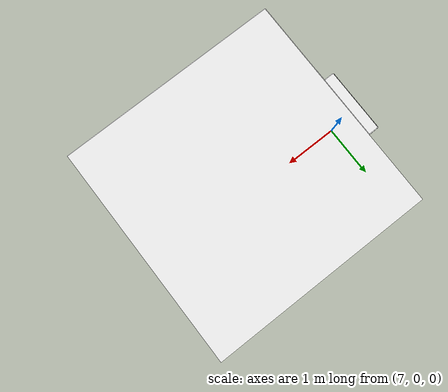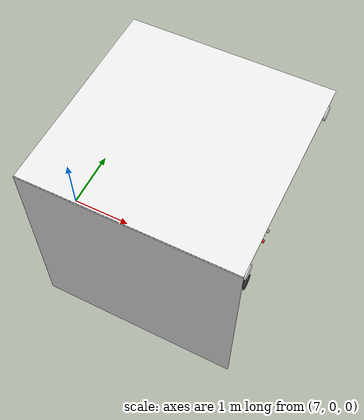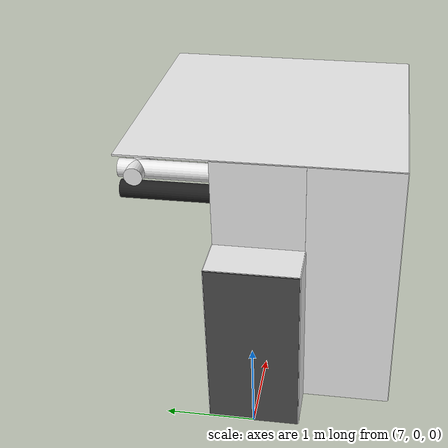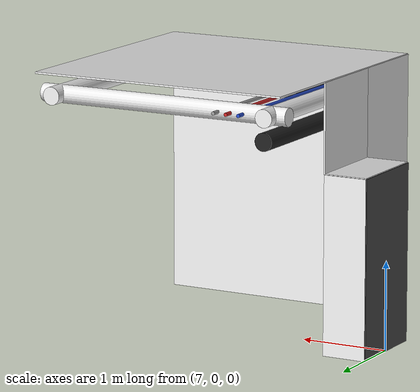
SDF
<sdf version="1.6">
 <world name="default">
  <model name="wall_front_3_0_0_3">
   <static>1</static>
   <pose>9.0 -1.5 1.5 0.0 0.0 3.14</pose>
   <link name="link">
    <collision name="collision"><geometry><box><size>3.0 0.02 3.0</size></box></geometry></collision>
    <visual name="visual">
     <material>
      <script><name>Gazebo/White</name><uri>file://media/materials/scripts/gazebo.material</uri></script>
     </material>
     <geometry><box><size>3.0 0.02 3.0</size></box></geometry>
    </visual>
   </link>
  </model>
  <model name="wall_top_3_0_0_3">
   <static>1</static>
   <pose>9.0 0.0 3.0 1.57 0.0 3.14</pose>
   <link name="link">
    <collision name="collision"><geometry><box><size>3.0 0.02 3.0</size></box></geometry></collision>
    <visual name="visual">
     <material>
      <script><name>Gazebo/White</name><uri>file://media/materials/scripts/gazebo.material</uri></script>
     </material>
     <geometry><box><size>3.0 0.02 3.0</size></box></geometry>
    </visual>
   </link>
  </model>
  <model name="white_pipe_left_3_0_0_3">
   <static>1</static>
   <pose>9.0 0.0 2.76 0.0 0.0 3.14</pose>
   <link name="link_0">
    <visual name="visual">
     <pose>-1.3 0 0 1.57 0 0</pose>
     <geometry><cylinder><radius>0.1</radius><length>3.0</length></cylinder></geometry>
     <material>
      <script><uri>file://media/materials/scripts/gazebo.material</uri><name>Gazebo/White</name></script>
     </material>
    </visual>
    <collision name="collision">
     <pose>-1.3 0 0 1.57 0 0</pose>
     <geometry><cylinder><radius>0.1</radius><length>3.0</length></cylinder></geometry>
    </collision>
   </link>
  </model>
  <model name="white_pipe_right_3_0_0_3">
   <static>1</static>
   <pose>9.0 0.0 2.76 0.0 0.0 3.14</pose>
   <link name="link_0">
    <visual name="visual">
     <pose>1.3 0 0 1.57 0 0</pose>
     <geometry><cylinder><radius>0.1</radius><length>3.0</length></cylinder></geometry>
     <material>
      <script><uri>file://media/materials/scripts/gazebo.material</uri><name>Gazebo/White</name></script>
     </material>
    </visual>
    <collision name="collision">
     <pose>1.3 0 0 1.57 0 0</pose>
     <geometry><cylinder><radius>0.1</radius><length>3.0</length></cylinder></geometry>
    </collision>
   </link>
  </model>
  <model name="black_pipe_right_3_0_0_3">
   <static>1</static>
   <pose>9.0 0.0 2.76 0.0 0.0 3.14</pose>
   <link name="link_0">
    <visual name="visual">
     <pose>1.3 0 -0.25 1.57 0 0</pose>
     <geometry><cylinder><radius>0.1</radius><length>3.0</length></cylinder></geometry>
     <material>
      <script><uri>file://media/materials/scripts/gazebo.material</uri><name>Gazebo/Black</name></script>
     </material>
    </visual>
    <collision name="collision">
     <pose>1.3 0 -0.25 1.57 0 0</pose>
     <geometry><cylinder><radius>0.1</radius><length>3.0</length></cylinder></geometry>
    </collision>
   </link>
  </model>
  <model name="grey_pipe_right_3_0_0_3">
   <static>1</static>
   <pose>9.0 0.0 2.76 0.0 0.0 3.14</pose>
   <link name="link_0">
    <visual name="visual">
     <pose>0.7 0 0 1.57 0 0</pose>
     <geometry><cylinder><radius>0.02</radius><length>3.0</length></cylinder></geometry>
     <material>
      <script><uri>file://media/materials/scripts/gazebo.material</uri><name>Gazebo/Grey</name></script>
     </material>
    </visual>
    <collision name="collision">
     <pose>0.7 0 0 1.57 0 0</pose>
     <geometry><cylinder><radius>0.02</radius><length>3.0</length></cylinder></geometry>
    </collision>
   </link>
  </model>
  <model name="red_pipe_right_3_0_0_3">
   <static>1</static>
   <pose>9.0 0.0 2.76 0.0 0.0 3.14</pose>
   <link name="link_0">
    <visual name="visual">
     <pose>0.85 0 0 1.57 0 0</pose>
     <geometry><cylinder><radius>0.02</radius><length>3.0</length></cylinder></geometry>
     <material>
      <script><uri>file://media/materials/scripts/gazebo.material</uri><name>Gazebo/Red</name></script>
     </material>
    </visual>
    <collision name="collision">
     <pose>0.85 0 0 1.57 0 0</pose>
     <geometry><cylinder><radius>0.02</radius><length>3.0</length></cylinder></geometry>
    </collision>
   </link>
  </model>
  <model name="blue_pipe_right_3_0_0_3">
   <static>1</static>
   <pose>9.0 0.0 2.76 0.0 0.0 3.14</pose>
   <link name="link_0">
    <visual name="visual">
     <pose>1 0 0 1.57 0 0</pose>
     <geometry><cylinder><radius>0.02</radius><length>3.0</length></cylinder></geometry>
     <material>
      <script><uri>file://media/materials/scripts/gazebo.material</uri><name>Gazebo/Blue</name></script>
     </material>
    </visual>
    <collision name="collision">
     <pose>1 0 0 1.57 0 0</pose>
     <geometry><cylinder><radius>0.02</radius><length>3.0</length></cylinder></geometry>
    </collision>
   </link>
  </model>
  <model name="white_pipe_left_1_3_0_0_3">
   <static>1</static>
   <pose>9.0 0.0 2.76 0.0 0.0 4.71</pose>
   <link name="link_0">
    <visual name="visual">
     <pose>-1.3 0 0 1.57 0 0</pose>
     <geometry><cylinder><radius>0.1</radius><length>3.0</length></cylinder></geometry>
     <material>
      <script><uri>file://media/materials/scripts/gazebo.material</uri><name>Gazebo/White</name></script>
     </material>
    </visual>
    <collision name="collision">
     <pose>-1.3 0 0 1.57 0 0</pose>
     <geometry><cylinder><radius>0.1</radius><length>3.0</length></cylinder></geometry>
    </collision>
   </link>
  </model>
  <model name="white_pipe_right_1_3_0_0_3">
   <static>1</static>
   <pose>9.0 0.0 2.76 0.0 0.0 4.71</pose>
   <link name="link_0">
    <visual name="visual">
     <pose>1.3 0 0 1.57 0 0</pose>
     <geometry><cylinder><radius>0.1</radius><length>3.0</length></cylinder></geometry>
     <material>
      <script><uri>file://media/materials/scripts/gazebo.material</uri><name>Gazebo/White</name></script>
     </material>
    </visual>
    <collision name="collision">
     <pose>1.3 0 0 1.57 0 0</pose>
     <geometry><cylinder><radius>0.1</radius><length>3.0</length></cylinder></geometry>
    </collision>
   </link>
  </model>
  <model name="black_pipe_right_1_3_0_0_3">
   <static>1</static>
   <pose>9.0 0.0 2.76 0.0 0.0 4.71</pose>
   <link name="link_0">
    <visual name="visual">
     <pose>1.3 0 -0.25 1.57 0 0</pose>
     <geometry><cylinder><radius>0.1</radius><length>3.0</length></cylinder></geometry>
     <material>
      <script><uri>file://media/materials/scripts/gazebo.material</uri><name>Gazebo/Black</name></script>
     </material>
    </visual>
    <collision name="collision">
     <pose>1.3 0 -0.25 1.57 0 0</pose>
     <geometry><cylinder><radius>0.1</radius><length>3.0</length></cylinder></geometry>
    </collision>
   </link>
  </model>
  <model name="grey_pipe_right_1_3_0_0_3">
   <static>1</static>
   <pose>9.0 0.0 2.76 0.0 0.0 4.71</pose>
   <link name="link_0">
    <visual name="visual">
     <pose>0.7 0 0 1.57 0 0</pose>
     <geometry><cylinder><radius>0.02</radius><length>3.0</length></cylinder></geometry>
     <material>
      <script><uri>file://media/materials/scripts/gazebo.material</uri><name>Gazebo/Grey</name></script>
     </material>
    </visual>
    <collision name="collision">
     <pose>0.7 0 0 1.57 0 0</pose>
     <geometry><cylinder><radius>0.02</radius><length>3.0</length></cylinder></geometry>
    </collision>
   </link>
  </model>
  <model name="red_pipe_right_1_3_0_0_3">
   <static>1</static>
   <pose>9.0 0.0 2.76 0.0 0.0 4.71</pose>
   <link name="link_0">
    <visual name="visual">
     <pose>0.85 0 0 1.57 0 0</pose>
     <geometry><cylinder><radius>0.02</radius><length>3.0</length></cylinder></geometry>
     <material>
      <script><uri>file://media/materials/scripts/gazebo.material</uri><name>Gazebo/Red</name></script>
     </material>
    </visual>
    <collision name="collision">
     <pose>0.85 0 0 1.57 0 0</pose>
     <geometry><cylinder><radius>0.02</radius><length>3.0</length></cylinder></geometry>
    </collision>
   </link>
  </model>
  <model name="wall_right_front_left_3_0_0_3">
   <static>1</static>
   <pose>7.5 -1.0 1.5 0.0 0.0 4.71</pose>
   <link name="link">
    <collision name="collision"><geometry><box><size>1.0 0.02 3.0</size></box></geometry></collision>
    <visual name="visual">
     <material>
      <script><name>Gazebo/White</name><uri>file://media/materials/scripts/gazebo.material</uri></script>
     </material>
     <geometry><box><size>1.0 0.02 3.0</size></box></geometry>
    </visual>
   </link>
  </model>
  <model name="wall_right_front_up_3_0_0_3">
   <static>1</static>
   <pose>7.5 0.0 2.5 0.0 0.0 4.71</pose>
   <link name="link">
    <collision name="collision"><geometry><box><size>1.0 0.02 1.0</size></box></geometry></collision>
    <visual name="visual">
     <material>
      <script><name>Gazebo/White</name><uri>file://media/materials/scripts/gazebo.material</uri></script>
     </material>
     <geometry><box><size>1.0 0.02 1.0</size></box></geometry>
    </visual>
   </link>
  </model>
  <model name="wall_right_inside_back_3_0_0_3">
   <static>1</static>
   <pose>7.0 0.0 1.0 0.0 0.0 4.71</pose>
   <link name="link">
    <collision name="collision"><geometry><box><size>1 0.02 2</size></box></geometry></collision>
    <visual name="visual">
     <material>
      <script><name>Gazebo/DarkGrey</name><uri>file://media/materials/scripts/gazebo.material</uri></script>
     </material>
     <geometry><box><size>1 0.02 2</size></box></geometry>
    </visual>
   </link>
  </model>
  <model name="wall_right_inside_left_3_0_0_3">
   <static>1</static>
   <pose>7.25 -0.5 1.0 0.0 0.0 3.14</pose>
   <link name="link">
    <collision name="collision"><geometry><box><size>0.5 0.02 2</size></box></geometry></collision>
    <visual name="visual">
     <material>
      <script><name>Gazebo/White</name><uri>file://media/materials/scripts/gazebo.material</uri></script>
     </material>
     <geometry><box><size>0.5 0.02 2</size></box></geometry>
    </visual>
   </link>
  </model>
  <model name="wall_right_inside_right_3_0_0_3">
   <static>1</static>
   <pose>7.25 0.5 1.0 0.0 0.0 3.14</pose>
   <link name="link">
    <collision name="collision"><geometry><box><size>0.5 0.02 2</size></box></geometry></collision>
    <visual name="visual">
     <material>
      <script><name>Gazebo/White</name><uri>file://media/materials/scripts/gazebo.material</uri></script>
     </material>
     <geometry><box><size>0.5 0.02 2</size></box></geometry>
    </visual>
   </link>
  </model>
  <model name="wall_right_inside_top_3_0_0_3">
   <static>1</static>
   <pose>7.25 0.0 2.0 1.57 0.0 4.71</pose>
   <link name="link">
    <collision name="collision"><geometry><box><size>1 0.02 0.5</size></box></geometry></collision>
    <visual name="visual">
     <material>
      <script><name>Gazebo/White</name><uri>file://media/materials/scripts/gazebo.material</uri></script>
     </material>
     <geometry><box><size>1 0.02 0.5</size></box></geometry>
    </visual>
   </link>
  </model>
 </world>
</sdf>
